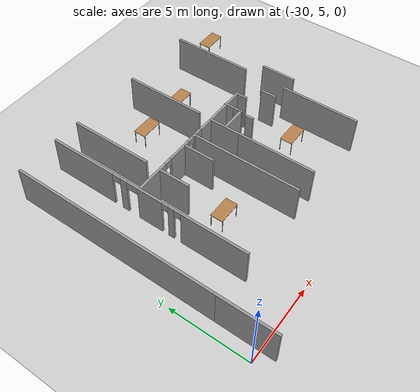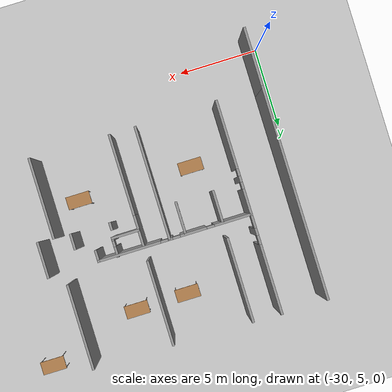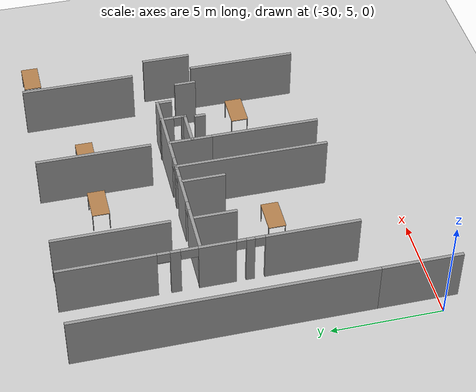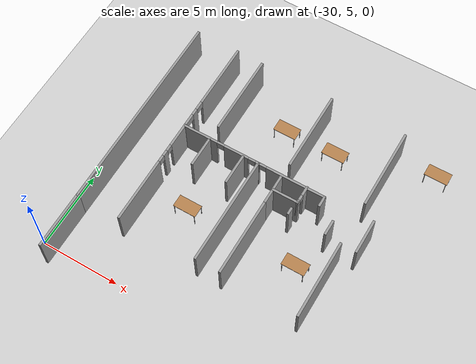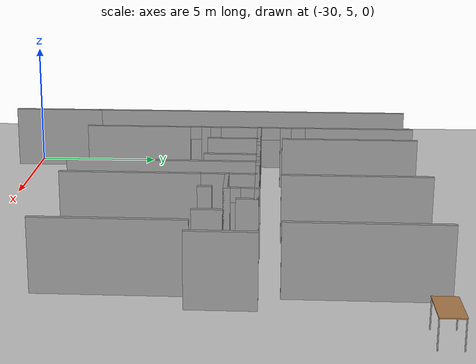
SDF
<sdf version="1.6">
 <world name="default">
  <model name="ground_plane">
   <static>1</static>
   <link name="link">
    <collision name="collision">
     <geometry><plane><normal>0 0 1</normal><size>100 100</size></plane></geometry>
     <surface><friction><ode><mu>100</mu><mu2>50</mu2></ode></friction></surface>
    </collision>
    <visual name="visual">
     <cast_shadows>0</cast_shadows>
     <geometry><plane><normal>0 0 1</normal><size>100 100</size></plane></geometry>
     <material>
      <script><uri>file://media/materials/scripts/gazebo.material</uri><name>Gazebo/Grey</name></script>
     </material>
    </visual>
   </link>
  </model>
  <model name="se1f1_fin.sdf">
   <pose>1.7543 -3.15003 0 0 -0 0</pose>
   <link name="Wall_114">
    <collision name="Wall_114_Collision">
     <geometry><box><size>5.25 0.15 2.5</size></box></geometry>
     <pose>0 0 1.25 0 -0 0</pose>
    </collision>
    <visual name="Wall_114_Visual">
     <pose>0 0 1.25 0 -0 0</pose>
     <geometry><box><size>5.25 0.15 2.5</size></box></geometry>
     <material>
      <script><uri>file://media/materials/scripts/gazebo.material</uri><name>Gazebo/Grey</name></script>
      <ambient>1 1 1 1</ambient>
     </material>
     <meta><layer>0</layer></meta>
    </visual>
    <pose>-26.3188 21.4343 0 0 -0 1.5708</pose>
   </link>
   <link name="Wall_116">
    <collision name="Wall_116_Collision">
     <geometry><box><size>5.25 0.15 2.5</size></box></geometry>
     <pose>0 0 1.25 0 -0 0</pose>
    </collision>
    <visual name="Wall_116_Visual">
     <pose>0 0 1.25 0 -0 0</pose>
     <geometry><box><size>5.25 0.15 2.5</size></box></geometry>
     <material>
      <script><uri>file://media/materials/scripts/gazebo.material</uri><name>Gazebo/Grey</name></script>
      <ambient>1 1 1 1</ambient>
     </material>
     <meta><layer>0</layer></meta>
    </visual>
    <pose>-21.4111 21.3539 0 0 -0 1.5708</pose>
   </link>
   <link name="Wall_118">
    <collision name="Wall_118_Collision">
     <geometry><box><size>5.25 0.15 2.5</size></box></geometry>
     <pose>0 0 1.25 0 -0 0</pose>
    </collision>
    <visual name="Wall_118_Visual">
     <pose>0 0 1.25 0 -0 0</pose>
     <geometry><box><size>5.25 0.15 2.5</size></box></geometry>
     <material>
      <script><uri>file://media/materials/scripts/gazebo.material</uri><name>Gazebo/Grey</name></script>
      <ambient>1 1 1 1</ambient>
     </material>
     <meta><layer>0</layer></meta>
    </visual>
    <pose>-16.4833 21.3136 0 0 -0 1.5708</pose>
   </link>
   <link name="Wall_14">
    <pose>-28.0766 17.4825 0 0 0 -1.5708</pose>
    <visual name="Wall_14_Visual_0">
     <pose>-4.45706 0 1.25 0 -0 0</pose>
     <geometry><box><size>4.33589 0.15 2.5</size></box></geometry>
     <material>
      <script><uri>file://media/materials/scripts/gazebo.material</uri><name>Gazebo/Grey</name></script>
      <ambient>1 1 1 1</ambient>
     </material>
     <meta><layer>0</layer></meta>
    </visual>
    <collision name="Wall_14_Collision_0">
     <geometry><box><size>4.33589 0.15 2.5</size></box></geometry>
     <pose>-4.45706 0 1.25 0 -0 0</pose>
    </collision>
    <visual name="Wall_14_Visual_1">
     <pose>-1.50054 0 1.25 0 -0 0</pose>
     <geometry><box><size>0.450123 0.15 2.5</size></box></geometry>
     <material>
      <script><uri>file://media/materials/scripts/gazebo.material</uri><name>Gazebo/Grey</name></script>
      <ambient>1 1 1 1</ambient>
     </material>
     <meta><layer>0</layer></meta>
    </visual>
    <collision name="Wall_14_Collision_1">
     <geometry><box><size>0.450123 0.15 2.5</size></box></geometry>
     <pose>-1.50054 0 1.25 0 -0 0</pose>
    </collision>
    <visual name="Wall_14_Visual_2">
     <pose>0.315177 0 1.25 0 -0 0</pose>
     <geometry><box><size>1.64581 0.15 2.5</size></box></geometry>
     <material>
      <script><uri>file://media/materials/scripts/gazebo.material</uri><name>Gazebo/Grey</name></script>
      <ambient>1 1 1 1</ambient>
     </material>
     <meta><layer>0</layer></meta>
    </visual>
    <collision name="Wall_14_Collision_2">
     <geometry><box><size>1.64581 0.15 2.5</size></box></geometry>
     <pose>0.315177 0 1.25 0 -0 0</pose>
    </collision>
    <visual name="Wall_14_Visual_3">
     <pose>1.7534 0 1.25 0 -0 0</pose>
     <geometry><box><size>0.382825 0.15 2.5</size></box></geometry>
     <material>
      <script><uri>file://media/materials/scripts/gazebo.material</uri><name>Gazebo/Grey</name></script>
      <ambient>1 1 1 1</ambient>
     </material>
     <meta><layer>0</layer></meta>
    </visual>
    <collision name="Wall_14_Collision_3">
     <geometry><box><size>0.382825 0.15 2.5</size></box></geometry>
     <pose>1.7534 0 1.25 0 -0 0</pose>
    </collision>
    <visual name="Wall_14_Visual_4">
     <pose>4.51008 0 1.25 0 -0 0</pose>
     <geometry><box><size>4.22984 0.15 2.5</size></box></geometry>
     <material>
      <script><uri>file://media/materials/scripts/gazebo.material</uri><name>Gazebo/Grey</name></script>
      <ambient>1 1 1 1</ambient>
     </material>
     <meta><layer>0</layer></meta>
    </visual>
    <collision name="Wall_14_Collision_4">
     <geometry><box><size>4.22984 0.15 2.5</size></box></geometry>
     <pose>4.51008 0 1.25 0 -0 0</pose>
    </collision>
    <visual name="Wall_14_Visual_5">
     <pose>-2.00736 0 2.25 0 -0 0</pose>
     <geometry><box><size>0.563507 0.15 0.5</size></box></geometry>
     <material>
      <script><uri>file://media/materials/scripts/gazebo.material</uri><name>Gazebo/Grey</name></script>
      <ambient>1 1 1 1</ambient>
     </material>
     <meta><layer>0</layer></meta>
    </visual>
    <collision name="Wall_14_Collision_5">
     <geometry><box><size>0.563507 0.15 0.5</size></box></geometry>
     <pose>-2.00736 0 2.25 0 -0 0</pose>
    </collision>
    <visual name="Wall_14_Visual_6">
     <pose>-0.891604 0 2.25 0 -0 0</pose>
     <geometry><box><size>0.76775 0.15 0.5</size></box></geometry>
     <material>
      <script><uri>file://media/materials/scripts/gazebo.material</uri><name>Gazebo/Grey</name></script>
      <ambient>1 1 1 1</ambient>
     </material>
     <meta><layer>0</layer></meta>
    </visual>
    <collision name="Wall_14_Collision_6">
     <geometry><box><size>0.76775 0.15 0.5</size></box></geometry>
     <pose>-0.891604 0 2.25 0 -0 0</pose>
    </collision>
    <visual name="Wall_14_Visual_7">
     <pose>1.35003 0 2.25 0 -0 0</pose>
     <geometry><box><size>0.4239 0.15 0.5</size></box></geometry>
     <material>
      <script><uri>file://media/materials/scripts/gazebo.material</uri><name>Gazebo/Grey</name></script>
      <ambient>1 1 1 1</ambient>
     </material>
     <meta><layer>0</layer></meta>
    </visual>
    <collision name="Wall_14_Collision_7">
     <geometry><box><size>0.4239 0.15 0.5</size></box></geometry>
     <pose>1.35003 0 2.25 0 -0 0</pose>
    </collision>
    <visual name="Wall_14_Visual_8">
     <pose>2.16998 0 2.25 0 -0 0</pose>
     <geometry><box><size>0.45035 0.15 0.5</size></box></geometry>
     <material>
      <script><uri>file://media/materials/scripts/gazebo.material</uri><name>Gazebo/Grey</name></script>
      <ambient>1 1 1 1</ambient>
     </material>
     <meta><layer>0</layer></meta>
    </visual>
    <collision name="Wall_14_Collision_8">
     <geometry><box><size>0.45035 0.15 0.5</size></box></geometry>
     <pose>2.16998 0 2.25 0 -0 0</pose>
    </collision>
   </link>
   <link name="Wall_18">
    <pose>-23.335 17.9007 0 0 -0 0</pose>
    <visual name="Wall_18_Visual_0">
     <pose>-3.61191 0 1.25 0 -0 0</pose>
     <geometry><box><size>2.27619 0.15 2.5</size></box></geometry>
     <material>
      <script><uri>file://media/materials/scripts/gazebo.material</uri><name>Gazebo/Grey</name></script>
      <ambient>1 1 1 1</ambient>
     </material>
     <meta><layer>0</layer></meta>
    </visual>
    <collision name="Wall_18_Collision_0">
     <geometry><box><size>2.27619 0.15 2.5</size></box></geometry>
     <pose>-3.61191 0 1.25 0 -0 0</pose>
    </collision>
    <visual name="Wall_18_Visual_1">
     <pose>-1.17693 0 1.25 0 -0 0</pose>
     <geometry><box><size>1.64064 0.15 2.5</size></box></geometry>
     <material>
      <script><uri>file://media/materials/scripts/gazebo.material</uri><name>Gazebo/Grey</name></script>
      <ambient>1 1 1 1</ambient>
     </material>
     <meta><layer>0</layer></meta>
    </visual>
    <collision name="Wall_18_Collision_1">
     <geometry><box><size>1.64064 0.15 2.5</size></box></geometry>
     <pose>-1.17693 0 1.25 0 -0 0</pose>
    </collision>
    <visual name="Wall_18_Visual_2">
     <pose>0.25407 0 1.25 0 -0 0</pose>
     <geometry><box><size>0.283366 0.15 2.5</size></box></geometry>
     <material>
      <script><uri>file://media/materials/scripts/gazebo.material</uri><name>Gazebo/Grey</name></script>
      <ambient>1 1 1 1</ambient>
     </material>
     <meta><layer>0</layer></meta>
    </visual>
    <collision name="Wall_18_Collision_2">
     <geometry><box><size>0.283366 0.15 2.5</size></box></geometry>
     <pose>0.25407 0 1.25 0 -0 0</pose>
    </collision>
    <visual name="Wall_18_Visual_3">
     <pose>2.79981 0 1.25 0 -0 0</pose>
     <geometry><box><size>3.90037 0.15 2.5</size></box></geometry>
     <material>
      <script><uri>file://media/materials/scripts/gazebo.material</uri><name>Gazebo/Grey</name></script>
      <ambient>1 1 1 1</ambient>
     </material>
     <meta><layer>0</layer></meta>
    </visual>
    <collision name="Wall_18_Collision_3">
     <geometry><box><size>3.90037 0.15 2.5</size></box></geometry>
     <pose>2.79981 0 1.25 0 -0 0</pose>
    </collision>
    <visual name="Wall_18_Visual_4">
     <pose>-2.23553 0 2.25 0 -0 0</pose>
     <geometry><box><size>0.47656 0.15 0.5</size></box></geometry>
     <material>
      <script><uri>file://media/materials/scripts/gazebo.material</uri><name>Gazebo/Grey</name></script>
      <ambient>1 1 1 1</ambient>
     </material>
     <meta><layer>0</layer></meta>
    </visual>
    <collision name="Wall_18_Collision_4">
     <geometry><box><size>0.47656 0.15 0.5</size></box></geometry>
     <pose>-2.23553 0 2.25 0 -0 0</pose>
    </collision>
    <visual name="Wall_18_Visual_5">
     <pose>-0.122112 0 2.25 0 -0 0</pose>
     <geometry><box><size>0.468998 0.15 0.5</size></box></geometry>
     <material>
      <script><uri>file://media/materials/scripts/gazebo.material</uri><name>Gazebo/Grey</name></script>
      <ambient>1 1 1 1</ambient>
     </material>
     <meta><layer>0</layer></meta>
    </visual>
    <collision name="Wall_18_Collision_5">
     <geometry><box><size>0.468998 0.15 0.5</size></box></geometry>
     <pose>-0.122112 0 2.25 0 -0 0</pose>
    </collision>
    <visual name="Wall_18_Visual_6">
     <pose>0.62269 0 2.25 0 -0 0</pose>
     <geometry><box><size>0.453875 0.15 0.5</size></box></geometry>
     <material>
      <script><uri>file://media/materials/scripts/gazebo.material</uri><name>Gazebo/Grey</name></script>
      <ambient>1 1 1 1</ambient>
     </material>
     <meta><layer>0</layer></meta>
    </visual>
    <collision name="Wall_18_Collision_6">
     <geometry><box><size>0.453875 0.15 0.5</size></box></geometry>
     <pose>0.62269 0 2.25 0 -0 0</pose>
    </collision>
   </link>
   <link name="Wall_19">
    <collision name="Wall_19_Collision">
     <geometry><box><size>0.75 0.15 2.5</size></box></geometry>
     <pose>0 0 1.25 0 -0 0</pose>
    </collision>
    <visual name="Wall_19_Visual">
     <pose>0 0 1.25 0 -0 0</pose>
     <geometry><box><size>0.75 0.15 2.5</size></box></geometry>
     <material>
      <script><uri>file://media/materials/scripts/gazebo.material</uri><name>Gazebo/Grey</name></script>
      <ambient>1 1 1 1</ambient>
     </material>
     <meta><layer>0</layer></meta>
    </visual>
    <pose>-18.66 17.6007 0 0 0 -1.5708</pose>
   </link>
   <link name="Wall_2">
    <collision name="Wall_2_Collision">
     <geometry><box><size>13.25 0.15 2.5</size></box></geometry>
     <pose>0 0 1.25 0 -0 0</pose>
    </collision>
    <visual name="Wall_2_Visual">
     <pose>0 0 1.25 0 -0 0</pose>
     <geometry><box><size>13.25 0.15 2.5</size></box></geometry>
     <material>
      <script><uri>file://media/materials/scripts/gazebo.material</uri><name>Gazebo/Grey</name></script>
      <ambient>1 1 1 1</ambient>
     </material>
     <meta><layer>0</layer></meta>
    </visual>
    <pose>-30.925 17.4675 0 0 0 -1.5708</pose>
   </link>
   <link name="Wall_23">
    <collision name="Wall_23_Collision">
     <geometry><box><size>2.25 0.15 2.5</size></box></geometry>
     <pose>0 0 1.25 0 -0 0</pose>
    </collision>
    <visual name="Wall_23_Visual">
     <pose>0 0 1.25 0 -0 0</pose>
     <geometry><box><size>2.25 0.15 2.5</size></box></geometry>
     <material>
      <script><uri>file://media/materials/scripts/gazebo.material</uri><name>Gazebo/Grey</name></script>
      <ambient>1 1 1 1</ambient>
     </material>
     <meta><layer>0</layer></meta>
    </visual>
    <pose>-15.5339 16.883 0 0 -0 1.5708</pose>
   </link>
   <link name="Wall_7">
    <collision name="Wall_7_Collision">
     <geometry><box><size>3.75 0.15 2.5</size></box></geometry>
     <pose>0 0 1.25 0 -0 0</pose>
    </collision>
    <visual name="Wall_7_Visual">
     <pose>0 0 1.25 0 -0 0</pose>
     <geometry><box><size>3.75 0.15 2.5</size></box></geometry>
     <material>
      <script><uri>file://media/materials/scripts/gazebo.material</uri><name>Gazebo/Grey</name></script>
      <ambient>1 1 1 1</ambient>
     </material>
     <meta><layer>0</layer></meta>
    </visual>
    <pose>-30.925 9.11753 0 0 0 -1.5708</pose>
   </link>
   <link name="Wall_73">
    <collision name="Wall_73_Collision">
     <geometry><box><size>1.75 0.15 2.5</size></box></geometry>
     <pose>0 0 1.25 0 -0 0</pose>
    </collision>
    <visual name="Wall_73_Visual">
     <pose>0 0 1.25 0 -0 0</pose>
     <geometry><box><size>1.75 0.15 2.5</size></box></geometry>
     <material>
      <script><uri>file://media/materials/scripts/gazebo.material</uri><name>Gazebo/Grey</name></script>
      <ambient>1 1 1 1</ambient>
     </material>
     <meta><layer>0</layer></meta>
    </visual>
    <pose>-20.6259 16.8413 0 0 -0 0</pose>
   </link>
   <link name="Wall_74">
    <pose>-19.8259 17.3913 0 0 -0 1.5708</pose>
    <visual name="Wall_74_Visual_0">
     <pose>-0.503529 0 1.25 0 -0 0</pose>
     <geometry><box><size>0.242941 0.15 2.5</size></box></geometry>
     <material>
      <script><uri>file://media/materials/scripts/gazebo.material</uri><name>Gazebo/Grey</name></script>
      <ambient>1 1 1 1</ambient>
     </material>
     <meta><layer>0</layer></meta>
    </visual>
    <collision name="Wall_74_Collision_0">
     <geometry><box><size>0.242941 0.15 2.5</size></box></geometry>
     <pose>-0.503529 0 1.25 0 -0 0</pose>
    </collision>
    <visual name="Wall_74_Visual_1">
     <pose>0.299259 0 1.25 0 -0 0</pose>
     <geometry><box><size>0.651482 0.15 2.5</size></box></geometry>
     <material>
      <script><uri>file://media/materials/scripts/gazebo.material</uri><name>Gazebo/Grey</name></script>
      <ambient>1 1 1 1</ambient>
     </material>
     <meta><layer>0</layer></meta>
    </visual>
    <collision name="Wall_74_Collision_1">
     <geometry><box><size>0.651482 0.15 2.5</size></box></geometry>
     <pose>0.299259 0 1.25 0 -0 0</pose>
    </collision>
    <visual name="Wall_74_Visual_2">
     <pose>-0.20427 0 2.25 0 -0 0</pose>
     <geometry><box><size>0.355577 0.15 0.5</size></box></geometry>
     <material>
      <script><uri>file://media/materials/scripts/gazebo.material</uri><name>Gazebo/Grey</name></script>
      <ambient>1 1 1 1</ambient>
     </material>
     <meta><layer>0</layer></meta>
    </visual>
    <collision name="Wall_74_Collision_2">
     <geometry><box><size>0.355577 0.15 0.5</size></box></geometry>
     <pose>-0.20427 0 2.25 0 -0 0</pose>
    </collision>
   </link>
   <link name="Wall_76">
    <collision name="Wall_76_Collision">
     <geometry><box><size>0.5 0.15 2.5</size></box></geometry>
     <pose>0 0 1.25 0 -0 0</pose>
    </collision>
    <visual name="Wall_76_Visual">
     <pose>0 0 1.25 0 -0 0</pose>
     <geometry><box><size>0.5 0.15 2.5</size></box></geometry>
     <material>
      <script><uri>file://media/materials/scripts/gazebo.material</uri><name>Gazebo/Grey</name></script>
      <ambient>1 1 1 1</ambient>
     </material>
     <meta><layer>0</layer></meta>
    </visual>
    <pose>-19.9459 16.1463 0 0 0 -1.5708</pose>
   </link>
   <link name="Wall_78">
    <collision name="Wall_78_Collision">
     <geometry><box><size>1 0.15 2.5</size></box></geometry>
     <pose>0 0 1.25 0 -0 0</pose>
    </collision>
    <visual name="Wall_78_Visual">
     <pose>0 0 1.25 0 -0 0</pose>
     <geometry><box><size>1 0.15 2.5</size></box></geometry>
     <material>
      <script><uri>file://media/materials/scripts/gazebo.material</uri><name>Gazebo/Grey</name></script>
      <ambient>1 1 1 1</ambient>
     </material>
     <meta><layer>0</layer></meta>
    </visual>
    <pose>-17.5359 16.3563 0 0 0 -1.5708</pose>
   </link>
   <link name="Wall_80">
    <collision name="Wall_80_Collision">
     <geometry><box><size>2 0.15 2.5</size></box></geometry>
     <pose>0 0 1.25 0 -0 0</pose>
    </collision>
    <visual name="Wall_80_Visual">
     <pose>0 0 1.25 0 -0 0</pose>
     <geometry><box><size>2 0.15 2.5</size></box></geometry>
     <material>
      <script><uri>file://media/materials/scripts/gazebo.material</uri><name>Gazebo/Grey</name></script>
      <ambient>1 1 1 1</ambient>
     </material>
     <meta><layer>0</layer></meta>
    </visual>
    <pose>-26.3259 16.8863 0 0 0 -1.5708</pose>
   </link>
   <link name="Wall_82">
    <collision name="Wall_82_Collision">
     <geometry><box><size>2 0.15 2.5</size></box></geometry>
     <pose>0 0 1.25 0 -0 0</pose>
    </collision>
    <visual name="Wall_82_Visual">
     <pose>0 0 1.25 0 -0 0</pose>
     <geometry><box><size>2 0.15 2.5</size></box></geometry>
     <material>
      <script><uri>file://media/materials/scripts/gazebo.material</uri><name>Gazebo/Grey</name></script>
      <ambient>1 1 1 1</ambient>
     </material>
     <meta><layer>0</layer></meta>
    </visual>
    <pose>-24.0259 16.8763 0 0 0 -1.5708</pose>
   </link>
   <link name="Wall_88">
    <collision name="Wall_88_Collision">
     <geometry><box><size>2 0.15 2.5</size></box></geometry>
     <pose>0 0 1.25 0 -0 0</pose>
    </collision>
    <visual name="Wall_88_Visual">
     <pose>0 0 1.25 0 -0 0</pose>
     <geometry><box><size>2 0.15 2.5</size></box></geometry>
     <material>
      <script><uri>file://media/materials/scripts/gazebo.material</uri><name>Gazebo/Grey</name></script>
      <ambient>1 1 1 1</ambient>
     </material>
     <meta><layer>0</layer></meta>
    </visual>
    <pose>-21.4511 16.9013 0 0 0 -1.5708</pose>
   </link>
   <link name="Wall_95">
    <collision name="Wall_95_Collision">
     <geometry><box><size>5 0.15 2.5</size></box></geometry>
     <pose>0 0 1.25 0 -0 0</pose>
    </collision>
    <visual name="Wall_95_Visual">
     <pose>0 0 1.25 0 -0 0</pose>
     <geometry><box><size>5 0.15 2.5</size></box></geometry>
     <material>
      <script><uri>file://media/materials/scripts/gazebo.material</uri><name>Gazebo/Grey</name></script>
      <ambient>1 1 1 1</ambient>
     </material>
     <meta><layer>0</layer></meta>
    </visual>
    <pose>-21.4482 13.4285 0 0 -0 1.5708</pose>
   </link>
   <link name="Wall_97">
    <collision name="Wall_97_Collision">
     <geometry><box><size>7 0.15 2.5</size></box></geometry>
     <pose>0 0 1.25 0 -0 0</pose>
    </collision>
    <visual name="Wall_97_Visual">
     <pose>0 0 1.25 0 -0 0</pose>
     <geometry><box><size>7 0.15 2.5</size></box></geometry>
     <material>
      <script><uri>file://media/materials/scripts/gazebo.material</uri><name>Gazebo/Grey</name></script>
      <ambient>1 1 1 1</ambient>
     </material>
     <meta><layer>0</layer></meta>
    </visual>
    <pose>-23.0398 14.4171 0 0 0 -1.5708</pose>
   </link>
   <link name="Wall_99">
    <collision name="Wall_99_Collision">
     <geometry><box><size>5 0.15 2.5</size></box></geometry>
     <pose>0 0 1.25 0 -0 0</pose>
    </collision>
    <visual name="Wall_99_Visual">
     <pose>0 0 1.25 0 -0 0</pose>
     <geometry><box><size>5 0.15 2.5</size></box></geometry>
     <material>
      <script><uri>file://media/materials/scripts/gazebo.material</uri><name>Gazebo/Grey</name></script>
      <ambient>1 1 1 1</ambient>
     </material>
     <meta><layer>0</layer></meta>
    </visual>
    <pose>-16.516 13.3708 0 0 0 -1.5708</pose>
   </link>
   <static>1</static>
  </model>
  <model name="table">
   <static>1</static>
   <link name="link">
    <collision name="surface">
     <pose>0 0 1 0 -0 0</pose>
     <geometry><box><size>1.5 0.8 0.03</size></box></geometry>
     <surface><friction><ode><mu>0.6</mu><mu2>0.6</mu2></ode></friction></surface>
    </collision>
    <visual name="visual1">
     <pose>0 0 1 0 -0 0</pose>
     <geometry><box><size>1.5 0.8 0.03</size></box></geometry>
     <material>
      <script><uri>file://media/materials/scripts/gazebo.material</uri><name>Gazebo/Wood</name></script>
     </material>
    </visual>
    <collision name="front_left_leg">
     <pose>0.68 0.38 0.5 0 -0 0</pose>
     <geometry><cylinder><radius>0.02</radius><length>1</length></cylinder></geometry>
    </collision>
    <visual name="front_left_leg">
     <pose>0.68 0.38 0.5 0 -0 0</pose>
     <geometry><cylinder><radius>0.02</radius><length>1</length></cylinder></geometry>
     <material>
      <script><uri>file://media/materials/scripts/gazebo.material</uri><name>Gazebo/Grey</name></script>
     </material>
    </visual>
    <collision name="front_right_leg">
     <pose>0.68 -0.38 0.5 0 -0 0</pose>
     <geometry><cylinder><radius>0.02</radius><length>1</length></cylinder></geometry>
    </collision>
    <visual name="front_right_leg">
     <pose>0.68 -0.38 0.5 0 -0 0</pose>
     <geometry><cylinder><radius>0.02</radius><length>1</length></cylinder></geometry>
     <material>
      <script><uri>file://media/materials/scripts/gazebo.material</uri><name>Gazebo/Grey</name></script>
     </material>
    </visual>
    <collision name="back_right_leg">
     <pose>-0.68 -0.38 0.5 0 -0 0</pose>
     <geometry><cylinder><radius>0.02</radius><length>1</length></cylinder></geometry>
    </collision>
    <visual name="back_right_leg">
     <pose>-0.68 -0.38 0.5 0 -0 0</pose>
     <geometry><cylinder><radius>0.02</radius><length>1</length></cylinder></geometry>
     <material>
      <script><uri>file://media/materials/scripts/gazebo.material</uri><name>Gazebo/Grey</name></script>
     </material>
    </visual>
    <collision name="back_left_leg">
     <pose>-0.68 0.38 0.5 0 -0 0</pose>
     <geometry><cylinder><radius>0.02</radius><length>1</length></cylinder></geometry>
    </collision>
    <visual name="back_left_leg">
     <pose>-0.68 0.38 0.5 0 -0 0</pose>
     <geometry><cylinder><radius>0.02</radius><length>1</length></cylinder></geometry>
     <material>
      <script><uri>file://media/materials/scripts/gazebo.material</uri><name>Gazebo/Grey</name></script>
     </material>
    </visual>
   </link>
   <pose>-23.8049 10.8976 0 0 -0 0</pose>
  </model>
  <model name="table_0">
   <static>1</static>
   <link name="link">
    <collision name="surface">
     <pose>0 0 1 0 -0 0</pose>
     <geometry><box><size>1.5 0.8 0.03</size></box></geometry>
     <surface><friction><ode><mu>0.6</mu><mu2>0.6</mu2></ode></friction></surface>
    </collision>
    <visual name="visual1">
     <pose>0 0 1 0 -0 0</pose>
     <geometry><box><size>1.5 0.8 0.03</size></box></geometry>
     <material>
      <script><uri>file://media/materials/scripts/gazebo.material</uri><name>Gazebo/Wood</name></script>
     </material>
    </visual>
    <collision name="front_left_leg">
     <pose>0.68 0.38 0.5 0 -0 0</pose>
     <geometry><cylinder><radius>0.02</radius><length>1</length></cylinder></geometry>
    </collision>
    <visual name="front_left_leg">
     <pose>0.68 0.38 0.5 0 -0 0</pose>
     <geometry><cylinder><radius>0.02</radius><length>1</length></cylinder></geometry>
     <material>
      <script><uri>file://media/materials/scripts/gazebo.material</uri><name>Gazebo/Grey</name></script>
     </material>
    </visual>
    <collision name="front_right_leg">
     <pose>0.68 -0.38 0.5 0 -0 0</pose>
     <geometry><cylinder><radius>0.02</radius><length>1</length></cylinder></geometry>
    </collision>
    <visual name="front_right_leg">
     <pose>0.68 -0.38 0.5 0 -0 0</pose>
     <geometry><cylinder><radius>0.02</radius><length>1</length></cylinder></geometry>
     <material>
      <script><uri>file://media/materials/scripts/gazebo.material</uri><name>Gazebo/Grey</name></script>
     </material>
    </visual>
    <collision name="back_right_leg">
     <pose>-0.68 -0.38 0.5 0 -0 0</pose>
     <geometry><cylinder><radius>0.02</radius><length>1</length></cylinder></geometry>
    </collision>
    <visual name="back_right_leg">
     <pose>-0.68 -0.38 0.5 0 -0 0</pose>
     <geometry><cylinder><radius>0.02</radius><length>1</length></cylinder></geometry>
     <material>
      <script><uri>file://media/materials/scripts/gazebo.material</uri><name>Gazebo/Grey</name></script>
     </material>
    </visual>
    <collision name="back_left_leg">
     <pose>-0.68 0.38 0.5 0 -0 0</pose>
     <geometry><cylinder><radius>0.02</radius><length>1</length></cylinder></geometry>
    </collision>
    <visual name="back_left_leg">
     <pose>-0.68 0.38 0.5 0 -0 0</pose>
     <geometry><cylinder><radius>0.02</radius><length>1</length></cylinder></geometry>
     <material>
      <script><uri>file://media/materials/scripts/gazebo.material</uri><name>Gazebo/Grey</name></script>
     </material>
    </visual>
   </link>
   <pose>-16.5645 10.8747 0 0 -0 0</pose>
  </model>
  <model name="table_7">
   <static>1</static>
   <link name="link">
    <collision name="surface">
     <pose>0 0 1 0 -0 0</pose>
     <geometry><box><size>1.5 0.8 0.03</size></box></geometry>
     <surface><friction><ode><mu>0.6</mu><mu2>0.6</mu2></ode></friction></surface>
    </collision>
    <visual name="visual1">
     <pose>0 0 1 0 -0 0</pose>
     <geometry><box><size>1.5 0.8 0.03</size></box></geometry>
     <material>
      <script><uri>file://media/materials/scripts/gazebo.material</uri><name>Gazebo/Wood</name></script>
     </material>
    </visual>
    <collision name="front_left_leg">
     <pose>0.68 0.38 0.5 0 -0 0</pose>
     <geometry><cylinder><radius>0.02</radius><length>1</length></cylinder></geometry>
    </collision>
    <visual name="front_left_leg">
     <pose>0.68 0.38 0.5 0 -0 0</pose>
     <geometry><cylinder><radius>0.02</radius><length>1</length></cylinder></geometry>
     <material>
      <script><uri>file://media/materials/scripts/gazebo.material</uri><name>Gazebo/Grey</name></script>
     </material>
    </visual>
    <collision name="front_right_leg">
     <pose>0.68 -0.38 0.5 0 -0 0</pose>
     <geometry><cylinder><radius>0.02</radius><length>1</length></cylinder></geometry>
    </collision>
    <visual name="front_right_leg">
     <pose>0.68 -0.38 0.5 0 -0 0</pose>
     <geometry><cylinder><radius>0.02</radius><length>1</length></cylinder></geometry>
     <material>
      <script><uri>file://media/materials/scripts/gazebo.material</uri><name>Gazebo/Grey</name></script>
     </material>
    </visual>
    <collision name="back_right_leg">
     <pose>-0.68 -0.38 0.5 0 -0 0</pose>
     <geometry><cylinder><radius>0.02</radius><length>1</length></cylinder></geometry>
    </collision>
    <visual name="back_right_leg">
     <pose>-0.68 -0.38 0.5 0 -0 0</pose>
     <geometry><cylinder><radius>0.02</radius><length>1</length></cylinder></geometry>
     <material>
      <script><uri>file://media/materials/scripts/gazebo.material</uri><name>Gazebo/Grey</name></script>
     </material>
    </visual>
    <collision name="back_left_leg">
     <pose>-0.68 0.38 0.5 0 -0 0</pose>
     <geometry><cylinder><radius>0.02</radius><length>1</length></cylinder></geometry>
    </collision>
    <visual name="back_left_leg">
     <pose>-0.68 0.38 0.5 0 -0 0</pose>
     <geometry><cylinder><radius>0.02</radius><length>1</length></cylinder></geometry>
     <material>
      <script><uri>file://media/materials/scripts/gazebo.material</uri><name>Gazebo/Grey</name></script>
     </material>
    </visual>
   </link>
   <pose>-21.315 18.3555 0 0 -0 0</pose>
  </model>
  <model name="table_8">
   <static>1</static>
   <link name="link">
    <collision name="surface">
     <pose>0 0 1 0 -0 0</pose>
     <geometry><box><size>1.5 0.8 0.03</size></box></geometry>
     <surface><friction><ode><mu>0.6</mu><mu2>0.6</mu2></ode></friction></surface>
    </collision>
    <visual name="visual1">
     <pose>0 0 1 0 -0 0</pose>
     <geometry><box><size>1.5 0.8 0.03</size></box></geometry>
     <material>
      <script><uri>file://media/materials/scripts/gazebo.material</uri><name>Gazebo/Wood</name></script>
     </material>
    </visual>
    <collision name="front_left_leg">
     <pose>0.68 0.38 0.5 0 -0 0</pose>
     <geometry><cylinder><radius>0.02</radius><length>1</length></cylinder></geometry>
    </collision>
    <visual name="front_left_leg">
     <pose>0.68 0.38 0.5 0 -0 0</pose>
     <geometry><cylinder><radius>0.02</radius><length>1</length></cylinder></geometry>
     <material>
      <script><uri>file://media/materials/scripts/gazebo.material</uri><name>Gazebo/Grey</name></script>
     </material>
    </visual>
    <collision name="front_right_leg">
     <pose>0.68 -0.38 0.5 0 -0 0</pose>
     <geometry><cylinder><radius>0.02</radius><length>1</length></cylinder></geometry>
    </collision>
    <visual name="front_right_leg">
     <pose>0.68 -0.38 0.5 0 -0 0</pose>
     <geometry><cylinder><radius>0.02</radius><length>1</length></cylinder></geometry>
     <material>
      <script><uri>file://media/materials/scripts/gazebo.material</uri><name>Gazebo/Grey</name></script>
     </material>
    </visual>
    <collision name="back_right_leg">
     <pose>-0.68 -0.38 0.5 0 -0 0</pose>
     <geometry><cylinder><radius>0.02</radius><length>1</length></cylinder></geometry>
    </collision>
    <visual name="back_right_leg">
     <pose>-0.68 -0.38 0.5 0 -0 0</pose>
     <geometry><cylinder><radius>0.02</radius><length>1</length></cylinder></geometry>
     <material>
      <script><uri>file://media/materials/scripts/gazebo.material</uri><name>Gazebo/Grey</name></script>
     </material>
    </visual>
    <collision name="back_left_leg">
     <pose>-0.68 0.38 0.5 0 -0 0</pose>
     <geometry><cylinder><radius>0.02</radius><length>1</length></cylinder></geometry>
    </collision>
    <visual name="back_left_leg">
     <pose>-0.68 0.38 0.5 0 -0 0</pose>
     <geometry><cylinder><radius>0.02</radius><length>1</length></cylinder></geometry>
     <material>
      <script><uri>file://media/materials/scripts/gazebo.material</uri><name>Gazebo/Grey</name></script>
     </material>
    </visual>
   </link>
   <pose>-18.0247 18.4021 0 0 -0 0</pose>
  </model>
  <model name="table_9">
   <static>1</static>
   <link name="link">
    <collision name="surface">
     <pose>0 0 1 0 -0 0</pose>
     <geometry><box><size>1.5 0.8 0.03</size></box></geometry>
     <surface><friction><ode><mu>0.6</mu><mu2>0.6</mu2></ode></friction></surface>
    </collision>
    <visual name="visual1">
     <pose>0 0 1 0 -0 0</pose>
     <geometry><box><size>1.5 0.8 0.03</size></box></geometry>
     <material>
      <script><uri>file://media/materials/scripts/gazebo.material</uri><name>Gazebo/Wood</name></script>
     </material>
    </visual>
    <collision name="front_left_leg">
     <pose>0.68 0.38 0.5 0 -0 0</pose>
     <geometry><cylinder><radius>0.02</radius><length>1</length></cylinder></geometry>
    </collision>
    <visual name="front_left_leg">
     <pose>0.68 0.38 0.5 0 -0 0</pose>
     <geometry><cylinder><radius>0.02</radius><length>1</length></cylinder></geometry>
     <material>
      <script><uri>file://media/materials/scripts/gazebo.material</uri><name>Gazebo/Grey</name></script>
     </material>
    </visual>
    <collision name="front_right_leg">
     <pose>0.68 -0.38 0.5 0 -0 0</pose>
     <geometry><cylinder><radius>0.02</radius><length>1</length></cylinder></geometry>
    </collision>
    <visual name="front_right_leg">
     <pose>0.68 -0.38 0.5 0 -0 0</pose>
     <geometry><cylinder><radius>0.02</radius><length>1</length></cylinder></geometry>
     <material>
      <script><uri>file://media/materials/scripts/gazebo.material</uri><name>Gazebo/Grey</name></script>
     </material>
    </visual>
    <collision name="back_right_leg">
     <pose>-0.68 -0.38 0.5 0 -0 0</pose>
     <geometry><cylinder><radius>0.02</radius><length>1</length></cylinder></geometry>
    </collision>
    <visual name="back_right_leg">
     <pose>-0.68 -0.38 0.5 0 -0 0</pose>
     <geometry><cylinder><radius>0.02</radius><length>1</length></cylinder></geometry>
     <material>
      <script><uri>file://media/materials/scripts/gazebo.material</uri><name>Gazebo/Grey</name></script>
     </material>
    </visual>
    <collision name="back_left_leg">
     <pose>-0.68 0.38 0.5 0 -0 0</pose>
     <geometry><cylinder><radius>0.02</radius><length>1</length></cylinder></geometry>
    </collision>
    <visual name="back_left_leg">
     <pose>-0.68 0.38 0.5 0 -0 0</pose>
     <geometry><cylinder><radius>0.02</radius><length>1</length></cylinder></geometry>
     <material>
      <script><uri>file://media/materials/scripts/gazebo.material</uri><name>Gazebo/Grey</name></script>
     </material>
    </visual>
   </link>
   <pose>-12.0544 20.1837 0 0 -0 0</pose>
  </model>
 </world>
</sdf>
